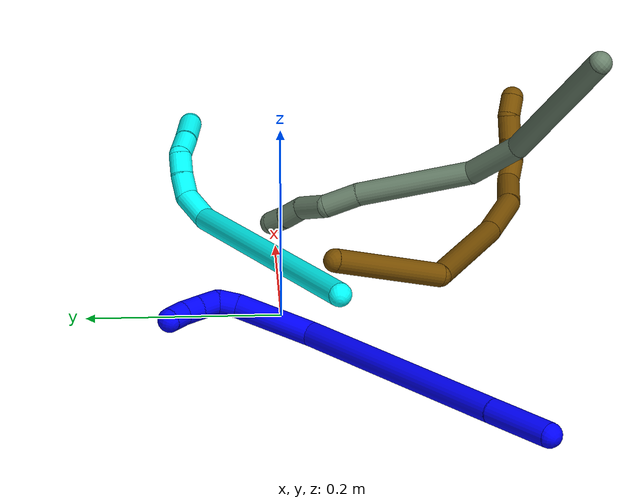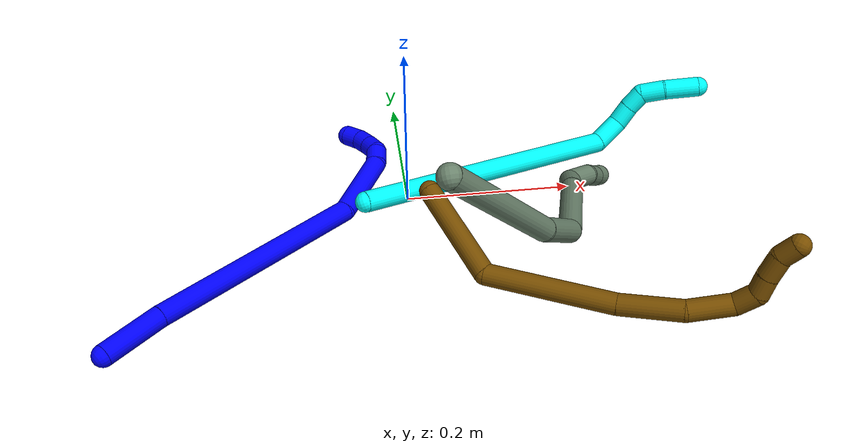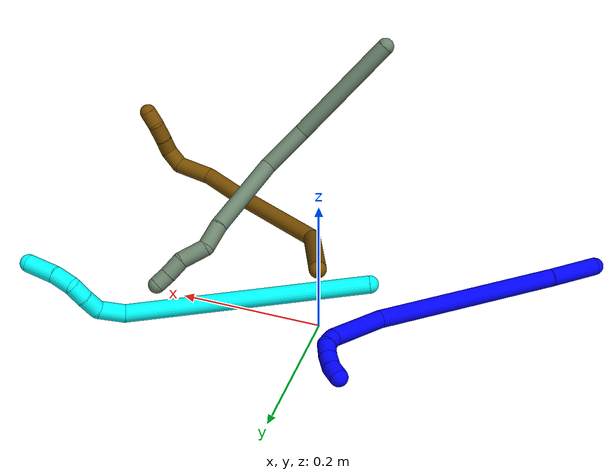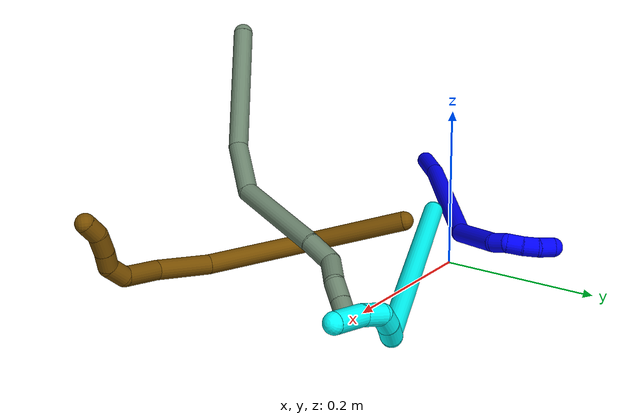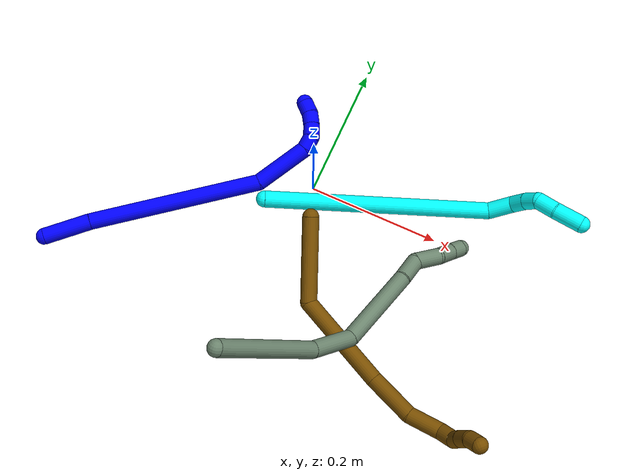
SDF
<sdf version="1.7">
 <world name="default">
  <model name="1">
   <static>0</static>
   <link name="1">
    <collision name="collision-cylinder-e_1_1_4">
     <pose>0.001435 0.006426 -0.035388 -2.96195 0.039873 -0.43575</pose>
     <geometry><cylinder><radius>0.0125</radius><length>0.07199</length></cylinder></geometry>
     <surface>
      <friction><ode><mu>1.16</mu><mu2>1.16</mu2><slip1>0</slip1><slip2>0</slip2></ode></friction>
      <contact><ode><kp>1e+06</kp><kd>1</kd><max_vel>0</max_vel><min_depth>0.001</min_depth></ode></contact>
     </surface>
    </collision>
    <visual name="visual-cylinder-e_1_1_4">
     <pose>0.001435 0.006426 -0.035388 -2.96195 0.039873 -0.43575</pose>
     <geometry><cylinder><radius>0.0125</radius><length>0.07199</length></cylinder></geometry>
     <material><ambient>0 0 1 1</ambient></material>
    </visual>
    <collision name="collision-cylinder-e_2_4_5">
     <pose>-0.002937 0.037322 -0.198801 -2.95274 -0.044517 0.46175</pose>
     <geometry><cylinder><radius>0.0125</radius><length>0.260944</length></cylinder></geometry>
     <surface>
      <friction><ode><mu>1.16</mu><mu2>1.16</mu2><slip1>0</slip1><slip2>0</slip2></ode></friction>
      <contact><ode><kp>1e+06</kp><kd>1</kd><max_vel>0</max_vel><min_depth>0.001</min_depth></ode></contact>
     </surface>
    </collision>
    <visual name="visual-cylinder-e_2_4_5">
     <pose>-0.002937 0.037322 -0.198801 -2.95274 -0.044517 0.46175</pose>
     <geometry><cylinder><radius>0.0125</radius><length>0.260944</length></cylinder></geometry>
     <material><ambient>0 0 1 1</ambient></material>
    </visual>
    <collision name="collision-cylinder-e_3_5_6">
     <pose>0.006308 0.068455 -0.366462 -2.97501 0.358316 -2.27769</pose>
     <geometry><cylinder><radius>0.0125</radius><length>0.085836</length></cylinder></geometry>
     <surface>
      <friction><ode><mu>1.16</mu><mu2>1.16</mu2><slip1>0</slip1><slip2>0</slip2></ode></friction>
      <contact><ode><kp>1e+06</kp><kd>1</kd><max_vel>0</max_vel><min_depth>0.001</min_depth></ode></contact>
     </surface>
    </collision>
    <visual name="visual-cylinder-e_3_5_6">
     <pose>0.006308 0.068455 -0.366462 -2.97501 0.358316 -2.27769</pose>
     <geometry><cylinder><radius>0.0125</radius><length>0.085836</length></cylinder></geometry>
     <material><ambient>0 0 1 1</ambient></material>
    </visual>
    <collision name="collision-cylinder-e_4_6_7">
     <pose>0.028628 0.077443 -0.413286 -2.82904 0.766112 -2.39613</pose>
     <geometry><cylinder><radius>0.0125</radius><length>0.020967</length></cylinder></geometry>
     <surface>
      <friction><ode><mu>1.16</mu><mu2>1.16</mu2><slip1>0</slip1><slip2>0</slip2></ode></friction>
      <contact><ode><kp>1e+06</kp><kd>1</kd><max_vel>0</max_vel><min_depth>0.001</min_depth></ode></contact>
     </surface>
    </collision>
    <visual name="visual-cylinder-e_4_6_7">
     <pose>0.028628 0.077443 -0.413286 -2.82904 0.766112 -2.39613</pose>
     <geometry><cylinder><radius>0.0125</radius><length>0.020967</length></cylinder></geometry>
     <material><ambient>0 0 1 1</ambient></material>
    </visual>
    <collision name="collision-cylinder-e_5_7_8">
     <pose>0.044106 0.085349 -0.422339 -1.89303 0.948767 -1.23853</pose>
     <geometry><cylinder><radius>0.0125</radius><length>0.020203</length></cylinder></geometry>
     <surface>
      <friction><ode><mu>1.16</mu><mu2>1.16</mu2><slip1>0</slip1><slip2>0</slip2></ode></friction>
      <contact><ode><kp>1e+06</kp><kd>1</kd><max_vel>0</max_vel><min_depth>0.001</min_depth></ode></contact>
     </surface>
    </collision>
    <visual name="visual-cylinder-e_5_7_8">
     <pose>0.044106 0.085349 -0.422339 -1.89303 0.948767 -1.23853</pose>
     <geometry><cylinder><radius>0.0125</radius><length>0.020203</length></cylinder></geometry>
     <material><ambient>0 0 1 1</ambient></material>
    </visual>
    <collision name="collision-cylinder-e_6_8_9">
     <pose>0.060987 0.095904 -0.424872 -1.7046 1.04627 -1.16614</pose>
     <geometry><cylinder><radius>0.0125</radius><length>0.020036</length></cylinder></geometry>
     <surface>
      <friction><ode><mu>1.16</mu><mu2>1.16</mu2><slip1>0</slip1><slip2>0</slip2></ode></friction>
      <contact><ode><kp>1e+06</kp><kd>1</kd><max_vel>0</max_vel><min_depth>0.001</min_depth></ode></contact>
     </surface>
    </collision>
    <visual name="visual-cylinder-e_6_8_9">
     <pose>0.060987 0.095904 -0.424872 -1.7046 1.04627 -1.16614</pose>
     <geometry><cylinder><radius>0.0125</radius><length>0.020036</length></cylinder></geometry>
     <material><ambient>0 0 1 1</ambient></material>
    </visual>
    <collision name="collision-cylinder-e_7_9_2">
     <pose>0.078496 0.105126 -0.423524 -1.12752 1.08167 -0.725732</pose>
     <geometry><cylinder><radius>0.0125</radius><length>0.020024</length></cylinder></geometry>
     <surface>
      <friction><ode><mu>1.16</mu><mu2>1.16</mu2><slip1>0</slip1><slip2>0</slip2></ode></friction>
      <contact><ode><kp>1e+06</kp><kd>1</kd><max_vel>0</max_vel><min_depth>0.001</min_depth></ode></contact>
     </surface>
    </collision>
    <visual name="visual-cylinder-e_7_9_2">
     <pose>0.078496 0.105126 -0.423524 -1.12752 1.08167 -0.725732</pose>
     <geometry><cylinder><radius>0.0125</radius><length>0.020024</length></cylinder></geometry>
     <material><ambient>0 0 1 1</ambient></material>
    </visual>
    <collision name="collision-sphere-2">
     <pose>0.087334 0.109375 -0.421507 0 -0 0</pose>
     <geometry><sphere><radius>0.0125</radius></sphere></geometry>
     <surface>
      <friction><ode><mu>1.16</mu><mu2>1.16</mu2><slip1>0</slip1><slip2>0</slip2></ode></friction>
      <contact><ode><kp>1e+06</kp><kd>1</kd><max_vel>0</max_vel><min_depth>0.001</min_depth></ode></contact>
     </surface>
    </collision>
    <visual name="visual-sphere-2">
     <pose>0.087334 0.109375 -0.421507 0 -0 0</pose>
     <geometry><sphere><radius>0.0125</radius></sphere></geometry>
     <material><ambient>0 0 1 1</ambient></material>
    </visual>
    <collision name="collision-sphere-9">
     <pose>0.069658 0.100876 -0.425542 0 -0 0</pose>
     <geometry><sphere><radius>0.0125</radius></sphere></geometry>
     <surface>
      <friction><ode><mu>1.16</mu><mu2>1.16</mu2><slip1>0</slip1><slip2>0</slip2></ode></friction>
      <contact><ode><kp>1e+06</kp><kd>1</kd><max_vel>0</max_vel><min_depth>0.001</min_depth></ode></contact>
     </surface>
    </collision>
    <visual name="visual-sphere-9">
     <pose>0.069658 0.100876 -0.425542 0 -0 0</pose>
     <geometry><sphere><radius>0.0125</radius></sphere></geometry>
     <material><ambient>0 0 1 1</ambient></material>
    </visual>
    <collision name="collision-sphere-4">
     <pose>0.00287 0.012853 -0.070775 0 -0 0</pose>
     <geometry><sphere><radius>0.0125</radius></sphere></geometry>
     <surface>
      <friction><ode><mu>1.16</mu><mu2>1.16</mu2><slip1>0</slip1><slip2>0</slip2></ode></friction>
      <contact><ode><kp>1e+06</kp><kd>1</kd><max_vel>0</max_vel><min_depth>0.001</min_depth></ode></contact>
     </surface>
    </collision>
    <visual name="visual-sphere-4">
     <pose>0.00287 0.012853 -0.070775 0 -0 0</pose>
     <geometry><sphere><radius>0.0125</radius></sphere></geometry>
     <material><ambient>0 0 1 1</ambient></material>
    </visual>
    <collision name="collision-sphere-1">
     <geometry><sphere><radius>0.0125</radius></sphere></geometry>
     <surface>
      <friction><ode><mu>1.16</mu><mu2>1.16</mu2><slip1>0</slip1><slip2>0</slip2></ode></friction>
      <contact><ode><kp>1e+06</kp><kd>1</kd><max_vel>0</max_vel><min_depth>0.001</min_depth></ode></contact>
     </surface>
    </collision>
    <visual name="visual-sphere-1">
     <geometry><sphere><radius>0.0125</radius></sphere></geometry>
     <material><ambient>0 0 1 1</ambient></material>
    </visual>
    <collision name="collision-sphere-8">
     <pose>0.052316 0.090932 -0.424203 0 -0 0</pose>
     <geometry><sphere><radius>0.0125</radius></sphere></geometry>
     <surface>
      <friction><ode><mu>1.16</mu><mu2>1.16</mu2><slip1>0</slip1><slip2>0</slip2></ode></friction>
      <contact><ode><kp>1e+06</kp><kd>1</kd><max_vel>0</max_vel><min_depth>0.001</min_depth></ode></contact>
     </surface>
    </collision>
    <visual name="visual-sphere-8">
     <pose>0.052316 0.090932 -0.424203 0 -0 0</pose>
     <geometry><sphere><radius>0.0125</radius></sphere></geometry>
     <material><ambient>0 0 1 1</ambient></material>
    </visual>
    <collision name="collision-sphere-5">
     <pose>-0.008743 0.061791 -0.326826 0 -0 0</pose>
     <geometry><sphere><radius>0.0125</radius></sphere></geometry>
     <surface>
      <friction><ode><mu>1.16</mu><mu2>1.16</mu2><slip1>0</slip1><slip2>0</slip2></ode></friction>
      <contact><ode><kp>1e+06</kp><kd>1</kd><max_vel>0</max_vel><min_depth>0.001</min_depth></ode></contact>
     </surface>
    </collision>
    <visual name="visual-sphere-5">
     <pose>-0.008743 0.061791 -0.326826 0 -0 0</pose>
     <geometry><sphere><radius>0.0125</radius></sphere></geometry>
     <material><ambient>0 0 1 1</ambient></material>
    </visual>
    <collision name="collision-sphere-6">
     <pose>0.021359 0.07512 -0.406098 0 -0 0</pose>
     <geometry><sphere><radius>0.0125</radius></sphere></geometry>
     <surface>
      <friction><ode><mu>1.16</mu><mu2>1.16</mu2><slip1>0</slip1><slip2>0</slip2></ode></friction>
      <contact><ode><kp>1e+06</kp><kd>1</kd><max_vel>0</max_vel><min_depth>0.001</min_depth></ode></contact>
     </surface>
    </collision>
    <visual name="visual-sphere-6">
     <pose>0.021359 0.07512 -0.406098 0 -0 0</pose>
     <geometry><sphere><radius>0.0125</radius></sphere></geometry>
     <material><ambient>0 0 1 1</ambient></material>
    </visual>
    <collision name="collision-sphere-7">
     <pose>0.035897 0.079766 -0.420475 0 -0 0</pose>
     <geometry><sphere><radius>0.0125</radius></sphere></geometry>
     <surface>
      <friction><ode><mu>1.16</mu><mu2>1.16</mu2><slip1>0</slip1><slip2>0</slip2></ode></friction>
      <contact><ode><kp>1e+06</kp><kd>1</kd><max_vel>0</max_vel><min_depth>0.001</min_depth></ode></contact>
     </surface>
    </collision>
    <visual name="visual-sphere-7">
     <pose>0.035897 0.079766 -0.420475 0 -0 0</pose>
     <geometry><sphere><radius>0.0125</radius></sphere></geometry>
     <material><ambient>0 0 1 1</ambient></material>
    </visual>
    <inertial>
     <pose>0.008327 0.046904 -0.240141 0 -0 0</pose>
     <mass>0.5</mass>
     <inertia>
      <ixx>0.001944</ixx>
      <ixy>0</ixy>
      <ixz>0</ixz>
      <iyy>-0.000677</iyy>
      <iyz>0</iyz>
      <izz>-0.000289</izz>
     </inertia>
    </inertial>
   </link>
   <pose>-0.335368 -0.239201 0.011723 -1.76735 -0.413409 2.2858</pose>
  </model>
  <model name="3">
   <static>0</static>
   <link name="3">
    <collision name="collision-cylinder-e_1_1_4">
     <pose>0.08779 0.041048 0.138961 -0.287221 0.544733 -0.080735</pose>
     <geometry><cylinder><radius>0.0125</radius><length>0.338835</length></cylinder></geometry>
     <surface>
      <friction><ode><mu>1.16</mu><mu2>1.16</mu2><slip1>0</slip1><slip2>0</slip2></ode></friction>
      <contact><ode><kp>1e+06</kp><kd>1</kd><max_vel>0</max_vel><min_depth>0.001</min_depth></ode></contact>
     </surface>
    </collision>
    <visual name="visual-cylinder-e_1_1_4">
     <pose>0.08779 0.041048 0.138961 -0.287221 0.544733 -0.080735</pose>
     <geometry><cylinder><radius>0.0125</radius><length>0.338835</length></cylinder></geometry>
     <material><ambient>0.003922 1 0.996078 1</ambient></material>
    </visual>
    <collision name="collision-cylinder-e_2_4_5">
     <pose>0.17766 0.092827 0.294052 -0.587089 0.1069 -0.032341</pose>
     <geometry><cylinder><radius>0.0125</radius><length>0.038969</length></cylinder></geometry>
     <surface>
      <friction><ode><mu>1.16</mu><mu2>1.16</mu2><slip1>0</slip1><slip2>0</slip2></ode></friction>
      <contact><ode><kp>1e+06</kp><kd>1</kd><max_vel>0</max_vel><min_depth>0.001</min_depth></ode></contact>
     </surface>
    </collision>
    <visual name="visual-cylinder-e_2_4_5">
     <pose>0.17766 0.092827 0.294052 -0.587089 0.1069 -0.032341</pose>
     <geometry><cylinder><radius>0.0125</radius><length>0.038969</length></cylinder></geometry>
     <material><ambient>0.003922 1 0.996078 1</ambient></material>
    </visual>
    <collision name="collision-cylinder-e_3_5_6">
     <pose>0.174338 0.108961 0.320677 -0.475337 -0.429104 0.105476</pose>
     <geometry><cylinder><radius>0.0125</radius><length>0.025962</length></cylinder></geometry>
     <surface>
      <friction><ode><mu>1.16</mu><mu2>1.16</mu2><slip1>0</slip1><slip2>0</slip2></ode></friction>
      <contact><ode><kp>1e+06</kp><kd>1</kd><max_vel>0</max_vel><min_depth>0.001</min_depth></ode></contact>
     </surface>
    </collision>
    <visual name="visual-cylinder-e_3_5_6">
     <pose>0.174338 0.108961 0.320677 -0.475337 -0.429104 0.105476</pose>
     <geometry><cylinder><radius>0.0125</radius><length>0.025962</length></cylinder></geometry>
     <material><ambient>0.003922 1 0.996078 1</ambient></material>
    </visual>
    <collision name="collision-cylinder-e_4_6_7">
     <pose>0.163821 0.117746 0.341367 -0.320465 -0.444458 0.073006</pose>
     <geometry><cylinder><radius>0.0125</radius><length>0.023794</length></cylinder></geometry>
     <surface>
      <friction><ode><mu>1.16</mu><mu2>1.16</mu2><slip1>0</slip1><slip2>0</slip2></ode></friction>
      <contact><ode><kp>1e+06</kp><kd>1</kd><max_vel>0</max_vel><min_depth>0.001</min_depth></ode></contact>
     </surface>
    </collision>
    <visual name="visual-cylinder-e_4_6_7">
     <pose>0.163821 0.117746 0.341367 -0.320465 -0.444458 0.073006</pose>
     <geometry><cylinder><radius>0.0125</radius><length>0.023794</length></cylinder></geometry>
     <material><ambient>0.003922 1 0.996078 1</ambient></material>
    </visual>
    <collision name="collision-cylinder-e_5_7_8">
     <pose>0.158695 0.118267 0.366193 0.19317 -0.000761 -7.4e-05</pose>
     <geometry><cylinder><radius>0.0125</radius><length>0.029819</length></cylinder></geometry>
     <surface>
      <friction><ode><mu>1.16</mu><mu2>1.16</mu2><slip1>0</slip1><slip2>0</slip2></ode></friction>
      <contact><ode><kp>1e+06</kp><kd>1</kd><max_vel>0</max_vel><min_depth>0.001</min_depth></ode></contact>
     </surface>
    </collision>
    <visual name="visual-cylinder-e_5_7_8">
     <pose>0.158695 0.118267 0.366193 0.19317 -0.000761 -7.4e-05</pose>
     <geometry><cylinder><radius>0.0125</radius><length>0.029819</length></cylinder></geometry>
     <material><ambient>0.003922 1 0.996078 1</ambient></material>
    </visual>
    <collision name="collision-cylinder-e_6_8_2">
     <pose>0.162154 0.111825 0.401544 0.171087 0.163573 0.014058</pose>
     <geometry><cylinder><radius>0.0125</radius><length>0.042621</length></cylinder></geometry>
     <surface>
      <friction><ode><mu>1.16</mu><mu2>1.16</mu2><slip1>0</slip1><slip2>0</slip2></ode></friction>
      <contact><ode><kp>1e+06</kp><kd>1</kd><max_vel>0</max_vel><min_depth>0.001</min_depth></ode></contact>
     </surface>
    </collision>
    <visual name="visual-cylinder-e_6_8_2">
     <pose>0.162154 0.111825 0.401544 0.171087 0.163573 0.014058</pose>
     <geometry><cylinder><radius>0.0125</radius><length>0.042621</length></cylinder></geometry>
     <material><ambient>0.003922 1 0.996078 1</ambient></material>
    </visual>
    <collision name="collision-sphere-2">
     <pose>0.165624 0.108246 0.422263 0 -0 0</pose>
     <geometry><sphere><radius>0.0125</radius></sphere></geometry>
     <surface>
      <friction><ode><mu>1.16</mu><mu2>1.16</mu2><slip1>0</slip1><slip2>0</slip2></ode></friction>
      <contact><ode><kp>1e+06</kp><kd>1</kd><max_vel>0</max_vel><min_depth>0.001</min_depth></ode></contact>
     </surface>
    </collision>
    <visual name="visual-sphere-2">
     <pose>0.165624 0.108246 0.422263 0 -0 0</pose>
     <geometry><sphere><radius>0.0125</radius></sphere></geometry>
     <material><ambient>0.003922 1 0.996078 1</ambient></material>
    </visual>
    <collision name="collision-sphere-4">
     <pose>0.175581 0.082095 0.277922 0 -0 0</pose>
     <geometry><sphere><radius>0.0125</radius></sphere></geometry>
     <surface>
      <friction><ode><mu>1.16</mu><mu2>1.16</mu2><slip1>0</slip1><slip2>0</slip2></ode></friction>
      <contact><ode><kp>1e+06</kp><kd>1</kd><max_vel>0</max_vel><min_depth>0.001</min_depth></ode></contact>
     </surface>
    </collision>
    <visual name="visual-sphere-4">
     <pose>0.175581 0.082095 0.277922 0 -0 0</pose>
     <geometry><sphere><radius>0.0125</radius></sphere></geometry>
     <material><ambient>0.003922 1 0.996078 1</ambient></material>
    </visual>
    <collision name="collision-sphere-1">
     <geometry><sphere><radius>0.0125</radius></sphere></geometry>
     <surface>
      <friction><ode><mu>1.16</mu><mu2>1.16</mu2><slip1>0</slip1><slip2>0</slip2></ode></friction>
      <contact><ode><kp>1e+06</kp><kd>1</kd><max_vel>0</max_vel><min_depth>0.001</min_depth></ode></contact>
     </surface>
    </collision>
    <visual name="visual-sphere-1">
     <geometry><sphere><radius>0.0125</radius></sphere></geometry>
     <material><ambient>0.003922 1 0.996078 1</ambient></material>
    </visual>
    <collision name="collision-sphere-8">
     <pose>0.158683 0.115405 0.380826 0 -0 0</pose>
     <geometry><sphere><radius>0.0125</radius></sphere></geometry>
     <surface>
      <friction><ode><mu>1.16</mu><mu2>1.16</mu2><slip1>0</slip1><slip2>0</slip2></ode></friction>
      <contact><ode><kp>1e+06</kp><kd>1</kd><max_vel>0</max_vel><min_depth>0.001</min_depth></ode></contact>
     </surface>
    </collision>
    <visual name="visual-sphere-8">
     <pose>0.158683 0.115405 0.380826 0 -0 0</pose>
     <geometry><sphere><radius>0.0125</radius></sphere></geometry>
     <material><ambient>0.003922 1 0.996078 1</ambient></material>
    </visual>
    <collision name="collision-sphere-5">
     <pose>0.179738 0.103558 0.310181 0 -0 0</pose>
     <geometry><sphere><radius>0.0125</radius></sphere></geometry>
     <surface>
      <friction><ode><mu>1.16</mu><mu2>1.16</mu2><slip1>0</slip1><slip2>0</slip2></ode></friction>
      <contact><ode><kp>1e+06</kp><kd>1</kd><max_vel>0</max_vel><min_depth>0.001</min_depth></ode></contact>
     </surface>
    </collision>
    <visual name="visual-sphere-5">
     <pose>0.179738 0.103558 0.310181 0 -0 0</pose>
     <geometry><sphere><radius>0.0125</radius></sphere></geometry>
     <material><ambient>0.003922 1 0.996078 1</ambient></material>
    </visual>
    <collision name="collision-sphere-6">
     <pose>0.168937 0.114363 0.331172 0 -0 0</pose>
     <geometry><sphere><radius>0.0125</radius></sphere></geometry>
     <surface>
      <friction><ode><mu>1.16</mu><mu2>1.16</mu2><slip1>0</slip1><slip2>0</slip2></ode></friction>
      <contact><ode><kp>1e+06</kp><kd>1</kd><max_vel>0</max_vel><min_depth>0.001</min_depth></ode></contact>
     </surface>
    </collision>
    <visual name="visual-sphere-6">
     <pose>0.168937 0.114363 0.331172 0 -0 0</pose>
     <geometry><sphere><radius>0.0125</radius></sphere></geometry>
     <material><ambient>0.003922 1 0.996078 1</ambient></material>
    </visual>
    <collision name="collision-sphere-7">
     <pose>0.158706 0.12113 0.351561 0 -0 0</pose>
     <geometry><sphere><radius>0.0125</radius></sphere></geometry>
     <surface>
      <friction><ode><mu>1.16</mu><mu2>1.16</mu2><slip1>0</slip1><slip2>0</slip2></ode></friction>
      <contact><ode><kp>1e+06</kp><kd>1</kd><max_vel>0</max_vel><min_depth>0.001</min_depth></ode></contact>
     </surface>
    </collision>
    <visual name="visual-sphere-7">
     <pose>0.158706 0.12113 0.351561 0 -0 0</pose>
     <geometry><sphere><radius>0.0125</radius></sphere></geometry>
     <material><ambient>0.003922 1 0.996078 1</ambient></material>
    </visual>
    <inertial>
     <pose>0.113474 0.062898 0.206051 0 -0 0</pose>
     <mass>0.5</mass>
     <inertia>
      <ixx>0.002585</ixx>
      <ixy>0</ixy>
      <ixz>0</ixz>
      <iyy>0.002955</iyy>
      <iyz>0</iyz>
      <izz>-0.002446</izz>
     </inertia>
    </inertial>
   </link>
   <pose>-0.053994 -0.057381 0.043581 0.845409 1.05698 0.873826</pose>
  </model>
  <model name="12">
   <static>0</static>
   <link name="12">
    <collision name="collision-cylinder-e_1_1_4">
     <pose>-0.01902 -0.021047 0.056872 0.354452 -0.303931 -0.054845</pose>
     <geometry><cylinder><radius>0.0125</radius><length>0.127108</length></cylinder></geometry>
     <surface>
      <friction><ode><mu>1.16</mu><mu2>1.16</mu2><slip1>0</slip1><slip2>0</slip2></ode></friction>
      <contact><ode><kp>1e+06</kp><kd>1</kd><max_vel>0</max_vel><min_depth>0.001</min_depth></ode></contact>
     </surface>
    </collision>
    <visual name="visual-cylinder-e_1_1_4">
     <pose>-0.01902 -0.021047 0.056872 0.354452 -0.303931 -0.054845</pose>
     <geometry><cylinder><radius>0.0125</radius><length>0.127108</length></cylinder></geometry>
     <material><ambient>0.466667 0.301961 0 1</ambient></material>
    </visual>
    <collision name="collision-cylinder-e_2_4_5">
     <pose>-0.015948 -0.033982 0.184211 -0.114623 0.301928 -0.017455</pose>
     <geometry><cylinder><radius>0.0125</radius><length>0.148588</length></cylinder></geometry>
     <surface>
      <friction><ode><mu>1.16</mu><mu2>1.16</mu2><slip1>0</slip1><slip2>0</slip2></ode></friction>
      <contact><ode><kp>1e+06</kp><kd>1</kd><max_vel>0</max_vel><min_depth>0.001</min_depth></ode></contact>
     </surface>
    </collision>
    <visual name="visual-cylinder-e_2_4_5">
     <pose>-0.015948 -0.033982 0.184211 -0.114623 0.301928 -0.017455</pose>
     <geometry><cylinder><radius>0.0125</radius><length>0.148588</length></cylinder></geometry>
     <material><ambient>0.466667 0.301961 0 1</ambient></material>
    </visual>
    <collision name="collision-cylinder-e_3_5_6">
     <pose>0.017358 -0.017065 0.287979 -0.258456 0.314743 -0.041237</pose>
     <geometry><cylinder><radius>0.0125</radius><length>0.072447</length></cylinder></geometry>
     <surface>
      <friction><ode><mu>1.16</mu><mu2>1.16</mu2><slip1>0</slip1><slip2>0</slip2></ode></friction>
      <contact><ode><kp>1e+06</kp><kd>1</kd><max_vel>0</max_vel><min_depth>0.001</min_depth></ode></contact>
     </surface>
    </collision>
    <visual name="visual-cylinder-e_3_5_6">
     <pose>0.017358 -0.017065 0.287979 -0.258456 0.314743 -0.041237</pose>
     <geometry><cylinder><radius>0.0125</radius><length>0.072447</length></cylinder></geometry>
     <material><ambient>0.466667 0.301961 0 1</ambient></material>
    </visual>
    <collision name="collision-cylinder-e_4_6_7">
     <pose>0.04317 0.000383 0.340993 -0.413251 0.59594 -0.128575</pose>
     <geometry><cylinder><radius>0.0125</radius><length>0.052019</length></cylinder></geometry>
     <surface>
      <friction><ode><mu>1.16</mu><mu2>1.16</mu2><slip1>0</slip1><slip2>0</slip2></ode></friction>
      <contact><ode><kp>1e+06</kp><kd>1</kd><max_vel>0</max_vel><min_depth>0.001</min_depth></ode></contact>
     </surface>
    </collision>
    <visual name="visual-cylinder-e_4_6_7">
     <pose>0.04317 0.000383 0.340993 -0.413251 0.59594 -0.128575</pose>
     <geometry><cylinder><radius>0.0125</radius><length>0.052019</length></cylinder></geometry>
     <material><ambient>0.466667 0.301961 0 1</ambient></material>
    </visual>
    <collision name="collision-cylinder-e_5_7_8">
     <pose>0.059991 0.019268 0.369539 -0.859074 0.162811 -0.074708</pose>
     <geometry><cylinder><radius>0.0125</radius><length>0.027409</length></cylinder></geometry>
     <surface>
      <friction><ode><mu>1.16</mu><mu2>1.16</mu2><slip1>0</slip1><slip2>0</slip2></ode></friction>
      <contact><ode><kp>1e+06</kp><kd>1</kd><max_vel>0</max_vel><min_depth>0.001</min_depth></ode></contact>
     </surface>
    </collision>
    <visual name="visual-cylinder-e_5_7_8">
     <pose>0.059991 0.019268 0.369539 -0.859074 0.162811 -0.074708</pose>
     <geometry><cylinder><radius>0.0125</radius><length>0.027409</length></cylinder></geometry>
     <material><ambient>0.466667 0.301961 0 1</ambient></material>
    </visual>
    <collision name="collision-cylinder-e_6_8_9">
     <pose>0.062449 0.04096 0.379694 -1.45585 0.020564 -0.018326</pose>
     <geometry><cylinder><radius>0.0125</radius><length>0.023062</length></cylinder></geometry>
     <surface>
      <friction><ode><mu>1.16</mu><mu2>1.16</mu2><slip1>0</slip1><slip2>0</slip2></ode></friction>
      <contact><ode><kp>1e+06</kp><kd>1</kd><max_vel>0</max_vel><min_depth>0.001</min_depth></ode></contact>
     </surface>
    </collision>
    <visual name="visual-cylinder-e_6_8_9">
     <pose>0.062449 0.04096 0.379694 -1.45585 0.020564 -0.018326</pose>
     <geometry><cylinder><radius>0.0125</radius><length>0.023062</length></cylinder></geometry>
     <material><ambient>0.466667 0.301961 0 1</ambient></material>
    </visual>
    <collision name="collision-cylinder-e_7_9_10">
     <pose>0.063234 0.065437 0.383751 -1.36386 0.041163 -0.03342</pose>
     <geometry><cylinder><radius>0.0125</radius><length>0.02664</length></cylinder></geometry>
     <surface>
      <friction><ode><mu>1.16</mu><mu2>1.16</mu2><slip1>0</slip1><slip2>0</slip2></ode></friction>
      <contact><ode><kp>1e+06</kp><kd>1</kd><max_vel>0</max_vel><min_depth>0.001</min_depth></ode></contact>
     </surface>
    </collision>
    <visual name="visual-cylinder-e_7_9_10">
     <pose>0.063234 0.065437 0.383751 -1.36386 0.041163 -0.03342</pose>
     <geometry><cylinder><radius>0.0125</radius><length>0.02664</length></cylinder></geometry>
     <material><ambient>0.466667 0.301961 0 1</ambient></material>
    </visual>
    <collision name="collision-cylinder-e_8_10_2">
     <pose>0.064592 0.08787 0.392807 -0.979147 0.071256 -0.03798</pose>
     <geometry><cylinder><radius>0.0125</radius><length>0.022728</length></cylinder></geometry>
     <surface>
      <friction><ode><mu>1.16</mu><mu2>1.16</mu2><slip1>0</slip1><slip2>0</slip2></ode></friction>
      <contact><ode><kp>1e+06</kp><kd>1</kd><max_vel>0</max_vel><min_depth>0.001</min_depth></ode></contact>
     </surface>
    </collision>
    <visual name="visual-cylinder-e_8_10_2">
     <pose>0.064592 0.08787 0.392807 -0.979147 0.071256 -0.03798</pose>
     <geometry><cylinder><radius>0.0125</radius><length>0.022728</length></cylinder></geometry>
     <material><ambient>0.466667 0.301961 0 1</ambient></material>
    </visual>
    <collision name="collision-sphere-2">
     <pose>0.065401 0.097279 0.399129 0 -0 0</pose>
     <geometry><sphere><radius>0.0125</radius></sphere></geometry>
     <surface>
      <friction><ode><mu>1.16</mu><mu2>1.16</mu2><slip1>0</slip1><slip2>0</slip2></ode></friction>
      <contact><ode><kp>1e+06</kp><kd>1</kd><max_vel>0</max_vel><min_depth>0.001</min_depth></ode></contact>
     </surface>
    </collision>
    <visual name="visual-sphere-2">
     <pose>0.065401 0.097279 0.399129 0 -0 0</pose>
     <geometry><sphere><radius>0.0125</radius></sphere></geometry>
     <material><ambient>0.466667 0.301961 0 1</ambient></material>
    </visual>
    <collision name="collision-sphere-10">
     <pose>0.063782 0.078462 0.386485 0 -0 0</pose>
     <geometry><sphere><radius>0.0125</radius></sphere></geometry>
     <surface>
      <friction><ode><mu>1.16</mu><mu2>1.16</mu2><slip1>0</slip1><slip2>0</slip2></ode></friction>
      <contact><ode><kp>1e+06</kp><kd>1</kd><max_vel>0</max_vel><min_depth>0.001</min_depth></ode></contact>
     </surface>
    </collision>
    <visual name="visual-sphere-10">
     <pose>0.063782 0.078462 0.386485 0 -0 0</pose>
     <geometry><sphere><radius>0.0125</radius></sphere></geometry>
     <material><ambient>0.466667 0.301961 0 1</ambient></material>
    </visual>
    <collision name="collision-sphere-9">
     <pose>0.062686 0.052412 0.381016 0 -0 0</pose>
     <geometry><sphere><radius>0.0125</radius></sphere></geometry>
     <surface>
      <friction><ode><mu>1.16</mu><mu2>1.16</mu2><slip1>0</slip1><slip2>0</slip2></ode></friction>
      <contact><ode><kp>1e+06</kp><kd>1</kd><max_vel>0</max_vel><min_depth>0.001</min_depth></ode></contact>
     </surface>
    </collision>
    <visual name="visual-sphere-9">
     <pose>0.062686 0.052412 0.381016 0 -0 0</pose>
     <geometry><sphere><radius>0.0125</radius></sphere></geometry>
     <material><ambient>0.466667 0.301961 0 1</ambient></material>
    </visual>
    <collision name="collision-sphere-4">
     <pose>-0.03804 -0.042094 0.113743 0 -0 0</pose>
     <geometry><sphere><radius>0.0125</radius></sphere></geometry>
     <surface>
      <friction><ode><mu>1.16</mu><mu2>1.16</mu2><slip1>0</slip1><slip2>0</slip2></ode></friction>
      <contact><ode><kp>1e+06</kp><kd>1</kd><max_vel>0</max_vel><min_depth>0.001</min_depth></ode></contact>
     </surface>
    </collision>
    <visual name="visual-sphere-4">
     <pose>-0.03804 -0.042094 0.113743 0 -0 0</pose>
     <geometry><sphere><radius>0.0125</radius></sphere></geometry>
     <material><ambient>0.466667 0.301961 0 1</ambient></material>
    </visual>
    <collision name="collision-sphere-1">
     <geometry><sphere><radius>0.0125</radius></sphere></geometry>
     <surface>
      <friction><ode><mu>1.16</mu><mu2>1.16</mu2><slip1>0</slip1><slip2>0</slip2></ode></friction>
      <contact><ode><kp>1e+06</kp><kd>1</kd><max_vel>0</max_vel><min_depth>0.001</min_depth></ode></contact>
     </surface>
    </collision>
    <visual name="visual-sphere-1">
     <geometry><sphere><radius>0.0125</radius></sphere></geometry>
     <material><ambient>0.466667 0.301961 0 1</ambient></material>
    </visual>
    <collision name="collision-sphere-8">
     <pose>0.062212 0.029508 0.378372 0 -0 0</pose>
     <geometry><sphere><radius>0.0125</radius></sphere></geometry>
     <surface>
      <friction><ode><mu>1.16</mu><mu2>1.16</mu2><slip1>0</slip1><slip2>0</slip2></ode></friction>
      <contact><ode><kp>1e+06</kp><kd>1</kd><max_vel>0</max_vel><min_depth>0.001</min_depth></ode></contact>
     </surface>
    </collision>
    <visual name="visual-sphere-8">
     <pose>0.062212 0.029508 0.378372 0 -0 0</pose>
     <geometry><sphere><radius>0.0125</radius></sphere></geometry>
     <material><ambient>0.466667 0.301961 0 1</ambient></material>
    </visual>
    <collision name="collision-sphere-5">
     <pose>0.006144 -0.025869 0.254679 0 -0 0</pose>
     <geometry><sphere><radius>0.0125</radius></sphere></geometry>
     <surface>
      <friction><ode><mu>1.16</mu><mu2>1.16</mu2><slip1>0</slip1><slip2>0</slip2></ode></friction>
      <contact><ode><kp>1e+06</kp><kd>1</kd><max_vel>0</max_vel><min_depth>0.001</min_depth></ode></contact>
     </surface>
    </collision>
    <visual name="visual-sphere-5">
     <pose>0.006144 -0.025869 0.254679 0 -0 0</pose>
     <geometry><sphere><radius>0.0125</radius></sphere></geometry>
     <material><ambient>0.466667 0.301961 0 1</ambient></material>
    </visual>
    <collision name="collision-sphere-6">
     <pose>0.028572 -0.008262 0.321279 0 -0 0</pose>
     <geometry><sphere><radius>0.0125</radius></sphere></geometry>
     <surface>
      <friction><ode><mu>1.16</mu><mu2>1.16</mu2><slip1>0</slip1><slip2>0</slip2></ode></friction>
      <contact><ode><kp>1e+06</kp><kd>1</kd><max_vel>0</max_vel><min_depth>0.001</min_depth></ode></contact>
     </surface>
    </collision>
    <visual name="visual-sphere-6">
     <pose>0.028572 -0.008262 0.321279 0 -0 0</pose>
     <geometry><sphere><radius>0.0125</radius></sphere></geometry>
     <material><ambient>0.466667 0.301961 0 1</ambient></material>
    </visual>
    <collision name="collision-sphere-7">
     <pose>0.057769 0.009027 0.360707 0 -0 0</pose>
     <geometry><sphere><radius>0.0125</radius></sphere></geometry>
     <surface>
      <friction><ode><mu>1.16</mu><mu2>1.16</mu2><slip1>0</slip1><slip2>0</slip2></ode></friction>
      <contact><ode><kp>1e+06</kp><kd>1</kd><max_vel>0</max_vel><min_depth>0.001</min_depth></ode></contact>
     </surface>
    </collision>
    <visual name="visual-sphere-7">
     <pose>0.057769 0.009027 0.360707 0 -0 0</pose>
     <geometry><sphere><radius>0.0125</radius></sphere></geometry>
     <material><ambient>0.466667 0.301961 0 1</ambient></material>
    </visual>
    <inertial>
     <pose>0.009906 -0.007456 0.222475 0 -0 0</pose>
     <mass>0.5</mass>
     <inertia>
      <ixx>0.000476</ixx>
      <ixy>0</ixy>
      <ixz>0</ixz>
      <iyy>0.000484</iyy>
      <iyz>0</iyz>
      <izz>-1.2e-05</izz>
     </inertia>
    </inertial>
   </link>
   <pose>0.021184 -0.056375 0.051336 1.62483 0.258471 0.818271</pose>
  </model>
  <model name="17">
   <static>0</static>
   <link name="17">
    <collision name="collision-cylinder-e_1_1_4">
     <pose>0.083865 0.005693 -0.024875 -2.91661 1.27542 -2.83901</pose>
     <geometry><cylinder><radius>0.0125</radius><length>0.175323</length></cylinder></geometry>
     <surface>
      <friction><ode><mu>1.16</mu><mu2>1.16</mu2><slip1>0</slip1><slip2>0</slip2></ode></friction>
      <contact><ode><kp>1e+06</kp><kd>1</kd><max_vel>0</max_vel><min_depth>0.001</min_depth></ode></contact>
     </surface>
    </collision>
    <visual name="visual-cylinder-e_1_1_4">
     <pose>0.083865 0.005693 -0.024875 -2.91661 1.27542 -2.83901</pose>
     <geometry><cylinder><radius>0.0125</radius><length>0.175323</length></cylinder></geometry>
     <material><ambient>0.415686 0.509804 0.423529 1</ambient></material>
    </visual>
    <collision name="collision-cylinder-e_2_4_5">
     <pose>0.203358 0.016108 -0.050875 -1.80474 1.43538 -1.6709</pose>
     <geometry><cylinder><radius>0.0125</radius><length>0.071913</length></cylinder></geometry>
     <surface>
      <friction><ode><mu>1.16</mu><mu2>1.16</mu2><slip1>0</slip1><slip2>0</slip2></ode></friction>
      <contact><ode><kp>1e+06</kp><kd>1</kd><max_vel>0</max_vel><min_depth>0.001</min_depth></ode></contact>
     </surface>
    </collision>
    <visual name="visual-cylinder-e_2_4_5">
     <pose>0.203358 0.016108 -0.050875 -1.80474 1.43538 -1.6709</pose>
     <geometry><cylinder><radius>0.0125</radius><length>0.071913</length></cylinder></geometry>
     <material><ambient>0.415686 0.509804 0.423529 1</ambient></material>
    </visual>
    <collision name="collision-cylinder-e_3_5_6">
     <pose>0.292276 0.041704 -0.024714 -0.653035 0.998171 -0.365084</pose>
     <geometry><cylinder><radius>0.0125</radius><length>0.126812</length></cylinder></geometry>
     <surface>
      <friction><ode><mu>1.16</mu><mu2>1.16</mu2><slip1>0</slip1><slip2>0</slip2></ode></friction>
      <contact><ode><kp>1e+06</kp><kd>1</kd><max_vel>0</max_vel><min_depth>0.001</min_depth></ode></contact>
     </surface>
    </collision>
    <visual name="visual-cylinder-e_3_5_6">
     <pose>0.292276 0.041704 -0.024714 -0.653035 0.998171 -0.365084</pose>
     <geometry><cylinder><radius>0.0125</radius><length>0.126812</length></cylinder></geometry>
     <material><ambient>0.415686 0.509804 0.423529 1</ambient></material>
    </visual>
    <collision name="collision-cylinder-e_4_6_7">
     <pose>0.361726 0.07111 0.008867 -0.935222 0.99013 -0.532334</pose>
     <geometry><cylinder><radius>0.0125</radius><length>0.03865</length></cylinder></geometry>
     <surface>
      <friction><ode><mu>1.16</mu><mu2>1.16</mu2><slip1>0</slip1><slip2>0</slip2></ode></friction>
      <contact><ode><kp>1e+06</kp><kd>1</kd><max_vel>0</max_vel><min_depth>0.001</min_depth></ode></contact>
     </surface>
    </collision>
    <visual name="visual-cylinder-e_4_6_7">
     <pose>0.361726 0.07111 0.008867 -0.935222 0.99013 -0.532334</pose>
     <geometry><cylinder><radius>0.0125</radius><length>0.03865</length></cylinder></geometry>
     <material><ambient>0.415686 0.509804 0.423529 1</ambient></material>
    </visual>
    <collision name="collision-cylinder-e_5_7_8">
     <pose>0.396987 0.077003 0.018091 0.732958 1.36725 0.606113</pose>
     <geometry><cylinder><radius>0.0125</radius><length>0.039014</length></cylinder></geometry>
     <surface>
      <friction><ode><mu>1.16</mu><mu2>1.16</mu2><slip1>0</slip1><slip2>0</slip2></ode></friction>
      <contact><ode><kp>1e+06</kp><kd>1</kd><max_vel>0</max_vel><min_depth>0.001</min_depth></ode></contact>
     </surface>
    </collision>
    <visual name="visual-cylinder-e_5_7_8">
     <pose>0.396987 0.077003 0.018091 0.732958 1.36725 0.606113</pose>
     <geometry><cylinder><radius>0.0125</radius><length>0.039014</length></cylinder></geometry>
     <material><ambient>0.415686 0.509804 0.423529 1</ambient></material>
    </visual>
    <collision name="collision-cylinder-e_6_8_9">
     <pose>0.429545 0.076945 0.021121 -1.53213 1.3812 -1.34336</pose>
     <geometry><cylinder><radius>0.0125</radius><length>0.027398</length></cylinder></geometry>
     <surface>
      <friction><ode><mu>1.16</mu><mu2>1.16</mu2><slip1>0</slip1><slip2>0</slip2></ode></friction>
      <contact><ode><kp>1e+06</kp><kd>1</kd><max_vel>0</max_vel><min_depth>0.001</min_depth></ode></contact>
     </surface>
    </collision>
    <visual name="visual-cylinder-e_6_8_9">
     <pose>0.429545 0.076945 0.021121 -1.53213 1.3812 -1.34336</pose>
     <geometry><cylinder><radius>0.0125</radius><length>0.027398</length></cylinder></geometry>
     <material><ambient>0.415686 0.509804 0.423529 1</ambient></material>
    </visual>
    <collision name="collision-cylinder-e_7_9_2">
     <pose>0.453362 0.080609 0.021953 -0.976721 1.44515 -0.876093</pose>
     <geometry><cylinder><radius>0.0125</radius><length>0.02089</length></cylinder></geometry>
     <surface>
      <friction><ode><mu>1.16</mu><mu2>1.16</mu2><slip1>0</slip1><slip2>0</slip2></ode></friction>
      <contact><ode><kp>1e+06</kp><kd>1</kd><max_vel>0</max_vel><min_depth>0.001</min_depth></ode></contact>
     </surface>
    </collision>
    <visual name="visual-cylinder-e_7_9_2">
     <pose>0.453362 0.080609 0.021953 -0.976721 1.44515 -0.876093</pose>
     <geometry><cylinder><radius>0.0125</radius><length>0.02089</length></cylinder></geometry>
     <material><ambient>0.415686 0.509804 0.423529 1</ambient></material>
    </visual>
    <collision name="collision-sphere-2">
     <pose>0.463724 0.081694 0.022686 0 -0 0</pose>
     <geometry><sphere><radius>0.0125</radius></sphere></geometry>
     <surface>
      <friction><ode><mu>1.16</mu><mu2>1.16</mu2><slip1>0</slip1><slip2>0</slip2></ode></friction>
      <contact><ode><kp>1e+06</kp><kd>1</kd><max_vel>0</max_vel><min_depth>0.001</min_depth></ode></contact>
     </surface>
    </collision>
    <visual name="visual-sphere-2">
     <pose>0.463724 0.081694 0.022686 0 -0 0</pose>
     <geometry><sphere><radius>0.0125</radius></sphere></geometry>
     <material><ambient>0.415686 0.509804 0.423529 1</ambient></material>
    </visual>
    <collision name="collision-sphere-9">
     <pose>0.442999 0.079525 0.021221 0 -0 0</pose>
     <geometry><sphere><radius>0.0125</radius></sphere></geometry>
     <surface>
      <friction><ode><mu>1.16</mu><mu2>1.16</mu2><slip1>0</slip1><slip2>0</slip2></ode></friction>
      <contact><ode><kp>1e+06</kp><kd>1</kd><max_vel>0</max_vel><min_depth>0.001</min_depth></ode></contact>
     </surface>
    </collision>
    <visual name="visual-sphere-9">
     <pose>0.442999 0.079525 0.021221 0 -0 0</pose>
     <geometry><sphere><radius>0.0125</radius></sphere></geometry>
     <material><ambient>0.415686 0.509804 0.423529 1</ambient></material>
    </visual>
    <collision name="collision-sphere-4">
     <pose>0.16773 0.011386 -0.04975 0 -0 0</pose>
     <geometry><sphere><radius>0.0125</radius></sphere></geometry>
     <surface>
      <friction><ode><mu>1.16</mu><mu2>1.16</mu2><slip1>0</slip1><slip2>0</slip2></ode></friction>
      <contact><ode><kp>1e+06</kp><kd>1</kd><max_vel>0</max_vel><min_depth>0.001</min_depth></ode></contact>
     </surface>
    </collision>
    <visual name="visual-sphere-4">
     <pose>0.16773 0.011386 -0.04975 0 -0 0</pose>
     <geometry><sphere><radius>0.0125</radius></sphere></geometry>
     <material><ambient>0.415686 0.509804 0.423529 1</ambient></material>
    </visual>
    <collision name="collision-sphere-1">
     <geometry><sphere><radius>0.0125</radius></sphere></geometry>
     <surface>
      <friction><ode><mu>1.16</mu><mu2>1.16</mu2><slip1>0</slip1><slip2>0</slip2></ode></friction>
      <contact><ode><kp>1e+06</kp><kd>1</kd><max_vel>0</max_vel><min_depth>0.001</min_depth></ode></contact>
     </surface>
    </collision>
    <visual name="visual-sphere-1">
     <geometry><sphere><radius>0.0125</radius></sphere></geometry>
     <material><ambient>0.415686 0.509804 0.423529 1</ambient></material>
    </visual>
    <collision name="collision-sphere-8">
     <pose>0.416092 0.074365 0.021021 0 -0 0</pose>
     <geometry><sphere><radius>0.0125</radius></sphere></geometry>
     <surface>
      <friction><ode><mu>1.16</mu><mu2>1.16</mu2><slip1>0</slip1><slip2>0</slip2></ode></friction>
      <contact><ode><kp>1e+06</kp><kd>1</kd><max_vel>0</max_vel><min_depth>0.001</min_depth></ode></contact>
     </surface>
    </collision>
    <visual name="visual-sphere-8">
     <pose>0.416092 0.074365 0.021021 0 -0 0</pose>
     <geometry><sphere><radius>0.0125</radius></sphere></geometry>
     <material><ambient>0.415686 0.509804 0.423529 1</ambient></material>
    </visual>
    <collision name="collision-sphere-5">
     <pose>0.238985 0.02083 -0.052001 0 -0 0</pose>
     <geometry><sphere><radius>0.0125</radius></sphere></geometry>
     <surface>
      <friction><ode><mu>1.16</mu><mu2>1.16</mu2><slip1>0</slip1><slip2>0</slip2></ode></friction>
      <contact><ode><kp>1e+06</kp><kd>1</kd><max_vel>0</max_vel><min_depth>0.001</min_depth></ode></contact>
     </surface>
    </collision>
    <visual name="visual-sphere-5">
     <pose>0.238985 0.02083 -0.052001 0 -0 0</pose>
     <geometry><sphere><radius>0.0125</radius></sphere></geometry>
     <material><ambient>0.415686 0.509804 0.423529 1</ambient></material>
    </visual>
    <collision name="collision-sphere-6">
     <pose>0.345568 0.062579 0.002573 0 -0 0</pose>
     <geometry><sphere><radius>0.0125</radius></sphere></geometry>
     <surface>
      <friction><ode><mu>1.16</mu><mu2>1.16</mu2><slip1>0</slip1><slip2>0</slip2></ode></friction>
      <contact><ode><kp>1e+06</kp><kd>1</kd><max_vel>0</max_vel><min_depth>0.001</min_depth></ode></contact>
     </surface>
    </collision>
    <visual name="visual-sphere-6">
     <pose>0.345568 0.062579 0.002573 0 -0 0</pose>
     <geometry><sphere><radius>0.0125</radius></sphere></geometry>
     <material><ambient>0.415686 0.509804 0.423529 1</ambient></material>
    </visual>
    <collision name="collision-sphere-7">
     <pose>0.377883 0.079641 0.01516 0 -0 0</pose>
     <geometry><sphere><radius>0.0125</radius></sphere></geometry>
     <surface>
      <friction><ode><mu>1.16</mu><mu2>1.16</mu2><slip1>0</slip1><slip2>0</slip2></ode></friction>
      <contact><ode><kp>1e+06</kp><kd>1</kd><max_vel>0</max_vel><min_depth>0.001</min_depth></ode></contact>
     </surface>
    </collision>
    <visual name="visual-sphere-7">
     <pose>0.377883 0.079641 0.01516 0 -0 0</pose>
     <geometry><sphere><radius>0.0125</radius></sphere></geometry>
     <material><ambient>0.415686 0.509804 0.423529 1</ambient></material>
    </visual>
    <inertial>
     <pose>0.2342 0.033979 -0.018136 0 -0 0</pose>
     <mass>0.5</mass>
     <inertia>
      <ixx>-7.8e-05</ixx>
      <ixy>0</ixy>
      <ixz>0</ixz>
      <iyy>0.000591</iyy>
      <iyz>0</iyz>
      <izz>-0.000725</izz>
     </inertia>
    </inertial>
   </link>
   <pose>0.009687 -0.321865 0.263414 -0.603668 0.513489 0.749713</pose>
  </model>
 </world>
</sdf>
